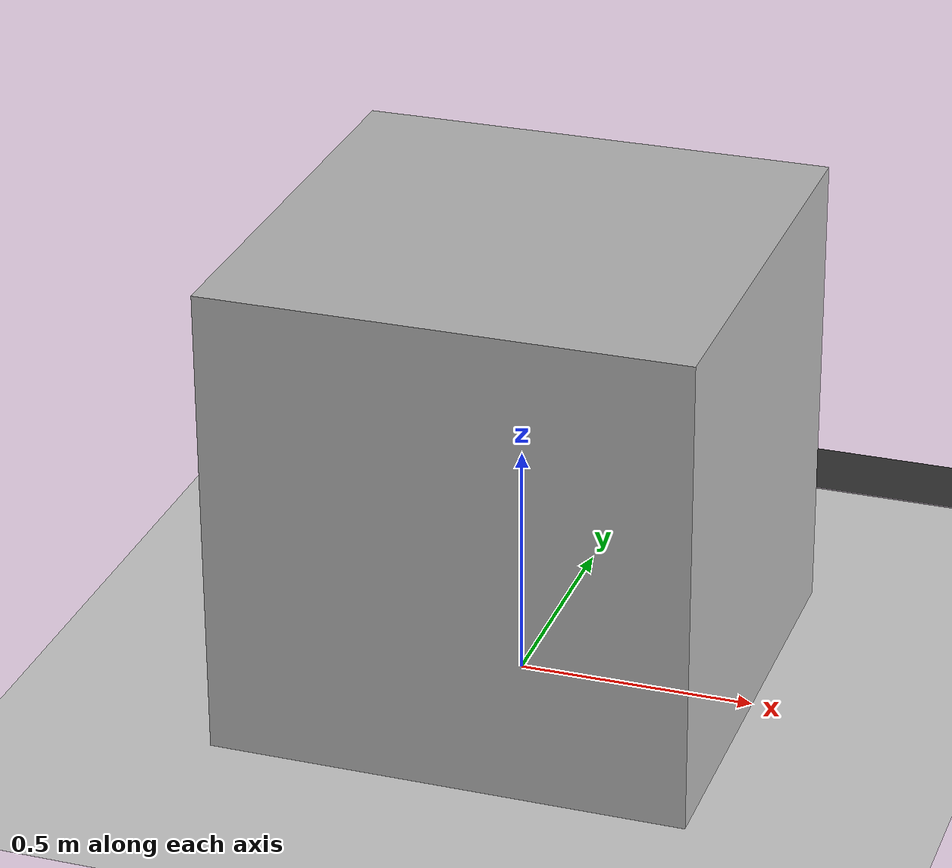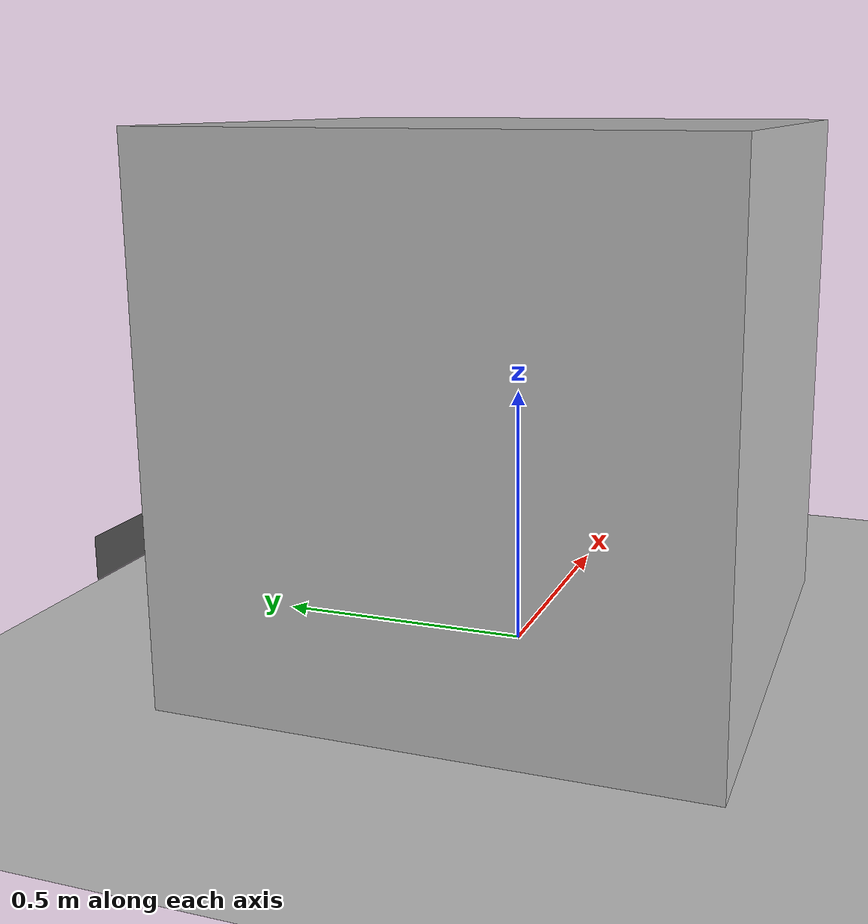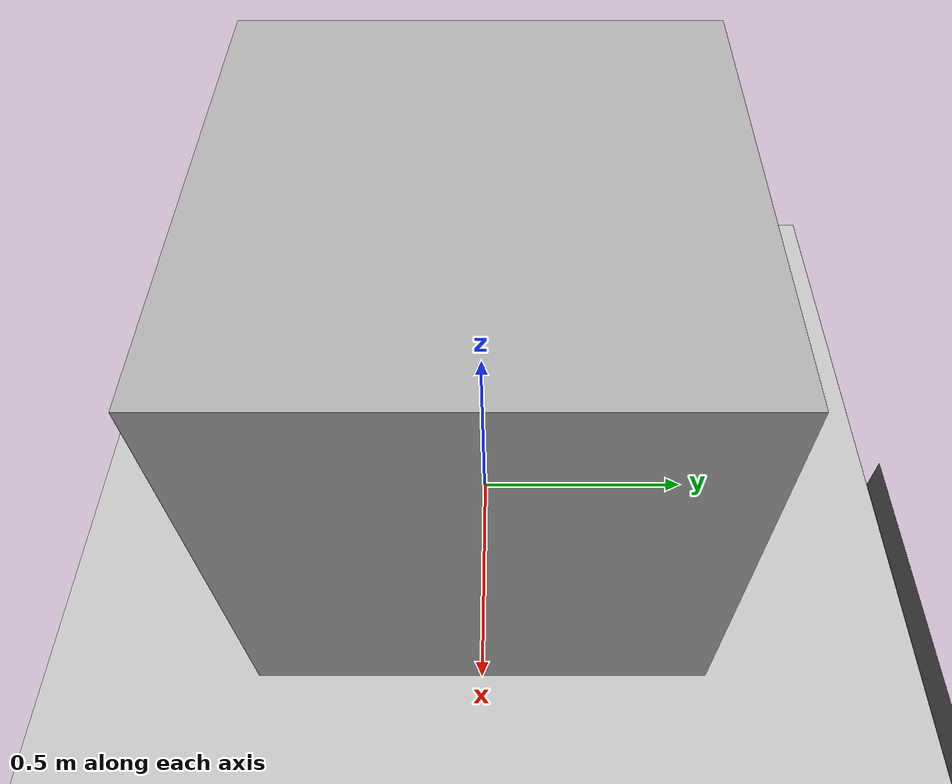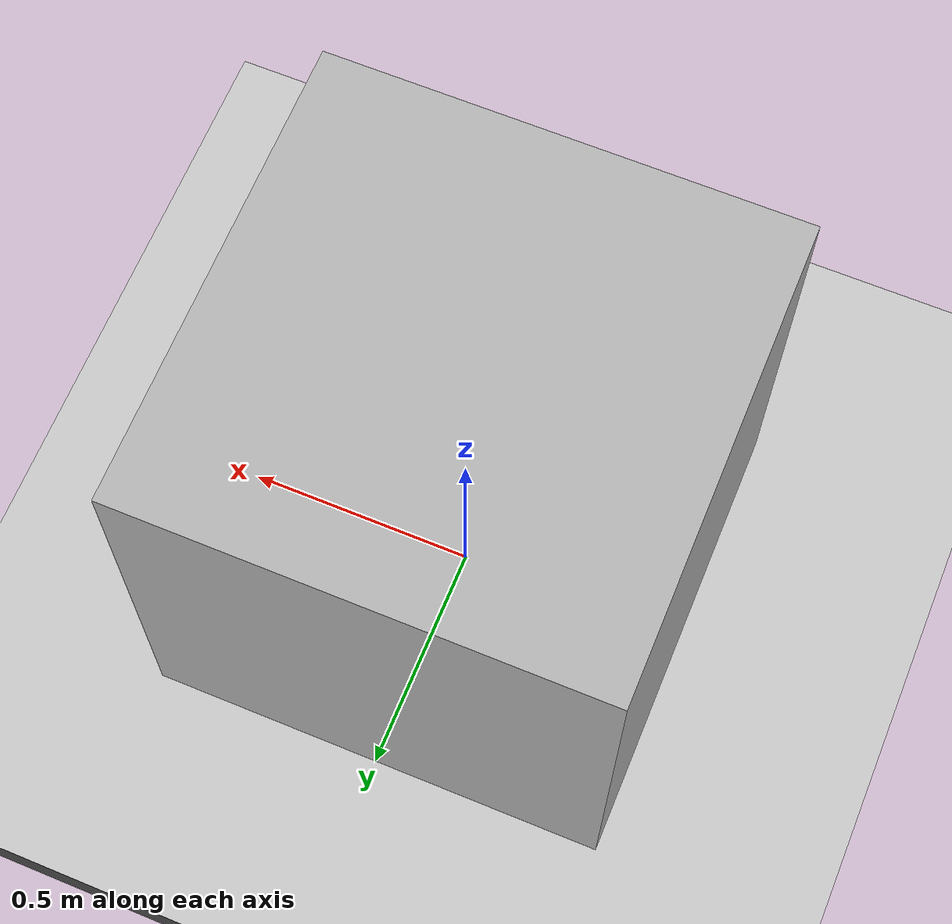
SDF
<?xml version="1.0"?>
<sdf version="1.4">
  <world name="default">

    <!-- Ground Plane -->
    <include>
      <uri>model://ground_plane</uri>
    </include>

    <include>
      <uri>model://sun</uri>
    </include>

    <model name="box">
      <pose>0 0 0.5 0 0 0</pose>
      <link name="link">
        <collision name="collision">
          <geometry>
            <box>
              <size>.01 .01 .01</size>
            </box>
          </geometry>
        </collision>

        <visual name="visual">
          <geometry>
            <box>
              <size>1 1 1</size>
            </box>
          </geometry>
        </visual>
      </link>

      <plugin name="model_push" filename="libmodel_push.so"/>
    </model>

    <model name='road_2_0_1'>
      <pose>50 10 0.05 0 0 0</pose>
      <static>true</static>
      <link name="link">
        <collision name="collision">
          <geometry>
            <box>
              <size>100 5 .1</size>
            </box>
          </geometry>
        </collision>
        <visual name="visual">
          <cast_shadows>false</cast_shadows>
          <geometry>
            <box>
              <size>100 5 .1</size>
            </box>
          </geometry>
          <material>
            <script>
                <uri>models/comps_road/materials/scripts</uri>
                <uri>models/comps_road/materials/textures</uri>
                <name>comps_road</name>
            </script>
          </material>
        </visual>
      </link>
    </model>

  </world>
</sdf>
